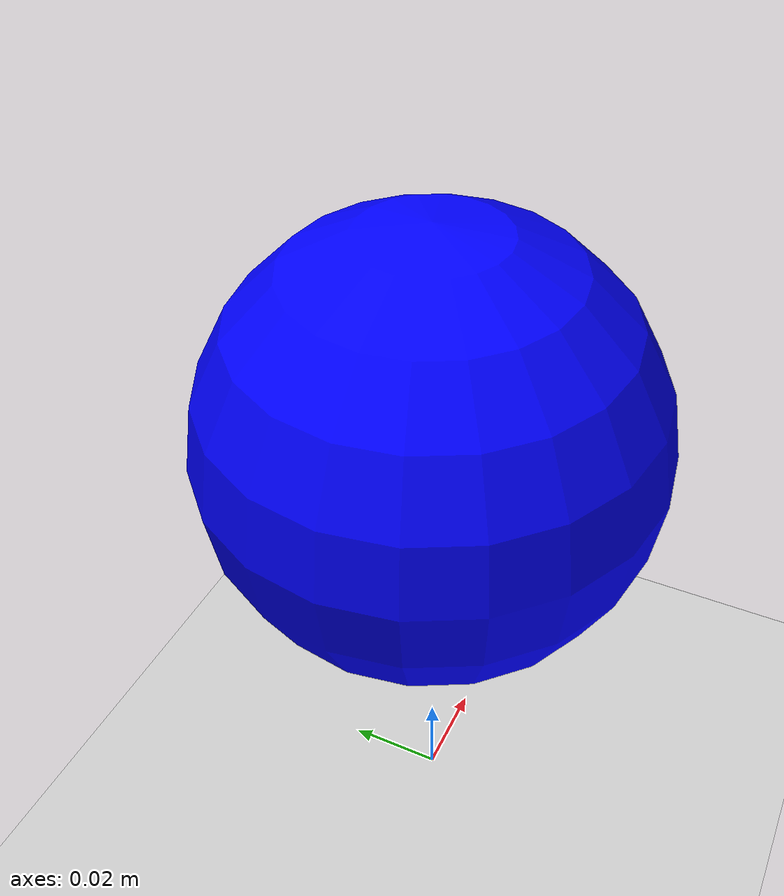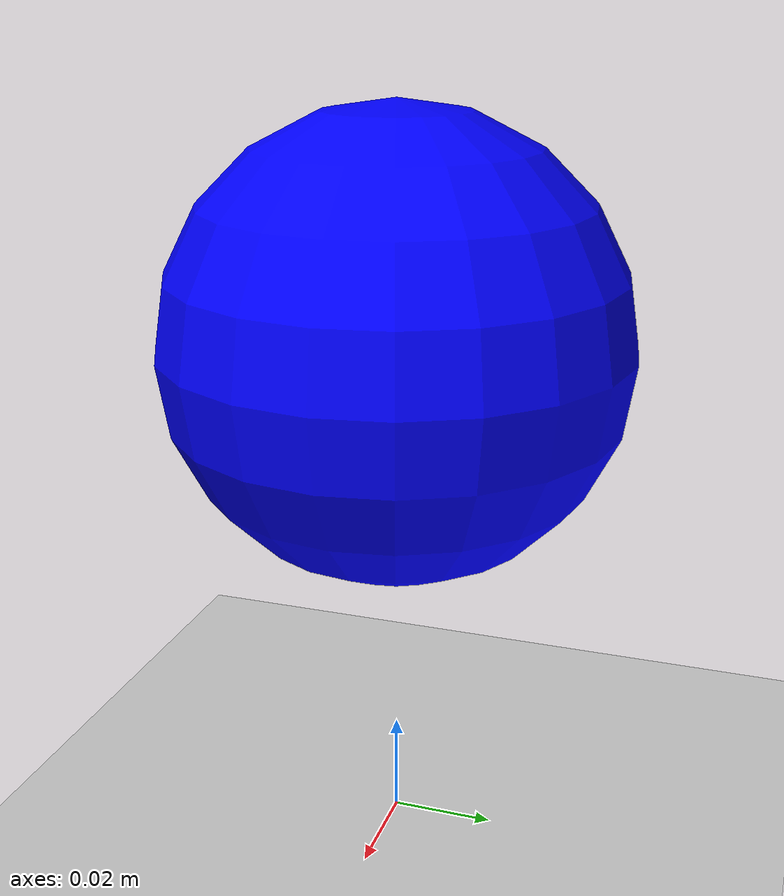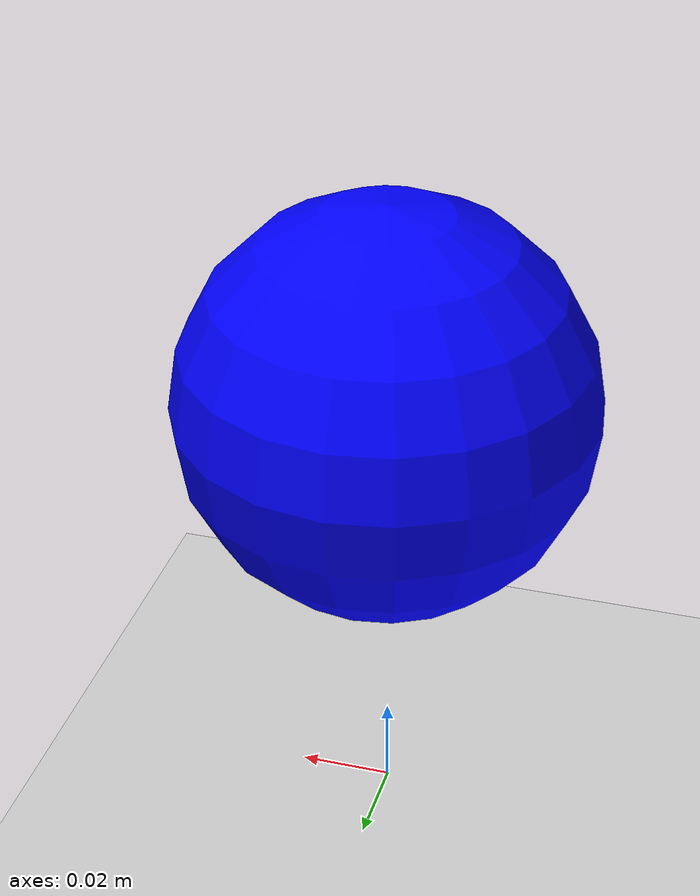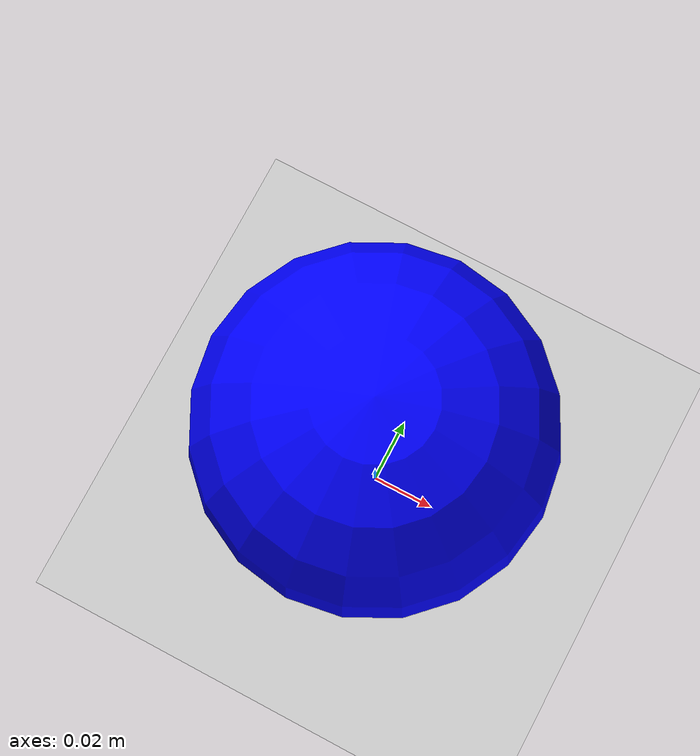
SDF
<?xml version="1.0" ?>
<!--

Try moving a model:

    gz service -s /world/shapes/set_pose --reqtype gz.msgs.Pose --reptype gz.msgs.Boolean --timeout 300 --req 'name: "box", position: {z: 5.0}'

-->
<sdf version="1.6">
  <world name="sphere">
    <scene>
      <ambient>1.0 1.0 1.0</ambient>
      <background>0.8 0.8 0.8</background>
    </scene>

    <light type="directional" name="sun">
      <cast_shadows>true</cast_shadows>
      <pose>0 0 10 0 0 0</pose>
      <diffuse>0.8 0.8 0.8 1</diffuse>
      <specular>0.2 0.2 0.2 1</specular>
      <attenuation>
        <range>1000</range>
        <constant>0.9</constant>
        <linear>0.01</linear>
        <quadratic>0.001</quadratic>
      </attenuation>
      <direction>-0.5 0.1 -0.9</direction>
    </light>

    <model name="ground_plane">
      <static>true</static>
      <link name="link">
        <collision name="collision">
          <geometry>
            <plane>
              <normal>0 0 1</normal>
              <size>100 100</size>
            </plane>
          </geometry>
        </collision>
        <visual name="visual">
          <geometry>
            <plane>
              <normal>0 0 1</normal>
              <size>100 100</size>
            </plane>
          </geometry>
          <material>
            <ambient>0.8 0.8 0.8 1</ambient>
            <diffuse>0.8 0.8 0.8 1</diffuse>
            <specular>0.8 0.8 0.8 1</specular>
          </material>
        </visual>
      </link>
    </model>

    <model name="sphere">
      <pose>0 0 0.1 0 0 0</pose>
      <link name="sphere_link">
        <inertial>
          <inertia>
            <ixx>0.1</ixx>
            <ixy>0</ixy>
            <ixz>0</ixz>
            <iyy>0.1</iyy>
            <iyz>0</iyz>
            <izz>0.1</izz>
          </inertia>
          <mass>1.0</mass>
        </inertial>
        <collision name="sphere_collision">
          <geometry>
            <sphere>
              <radius>0.045</radius>
            </sphere>
          </geometry>
        </collision>

        <visual name="sphere_visual">
          <geometry>
            <sphere>
              <radius>0.045</radius>
            </sphere>
          </geometry>
          <material>
            <ambient>0 0 1 1</ambient>
            <diffuse>0 0 1 1</diffuse>
            <specular>0 0 1 1</specular>
          </material>
        </visual>
      </link>
    </model>
  </world>
</sdf>
